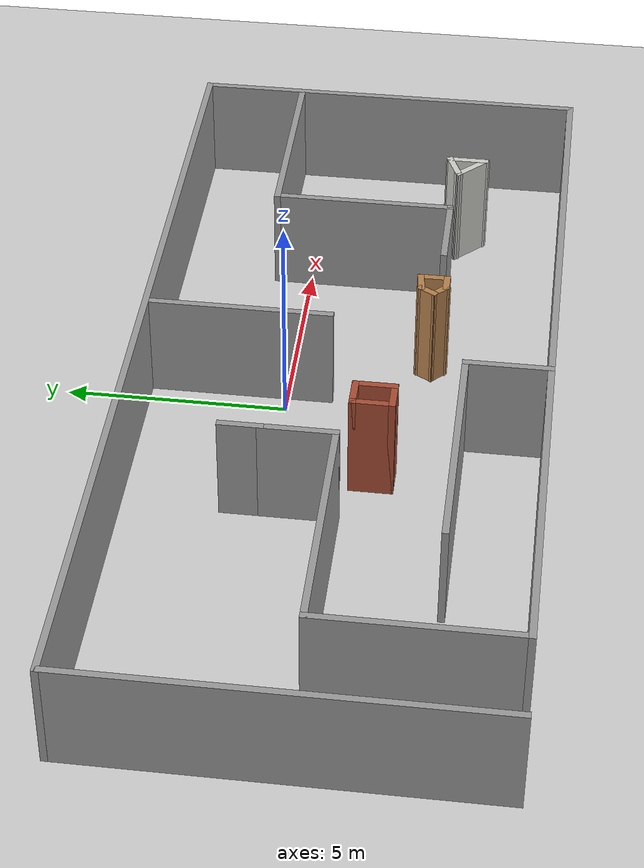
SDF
<sdf version="1.6">
 <world name="default">
  <plugin name="hello" filename="libhello.so"/>
  <light name="sun" type="directional">
   <pose>0 0 10 0 -0 0</pose>
   <diffuse>0.8 0.8 0.8 1</diffuse>
   <specular>0.2 0.2 0.2 1</specular>
   <attenuation>
    <range>1000</range>
    <constant>0.9</constant>
    <linear>0.01</linear>
    <quadratic>0.001</quadratic>
   </attenuation>
   <direction>-0.5 0.1 -0.9</direction>
  </light>
  <model name="ground_plane">
   <static>1</static>
   <link name="link">
    <collision name="collision">
     <geometry><plane><normal>0 0 1</normal><size>100 100</size></plane></geometry>
     <surface>
      <contact><collide_bitmask>65535</collide_bitmask></contact>
      <friction><ode><mu>100</mu><mu2>50</mu2></ode></friction>
     </surface>
    </collision>
    <visual name="visual">
     <cast_shadows>0</cast_shadows>
     <geometry><plane><normal>0 0 1</normal><size>100 100</size></plane></geometry>
     <material>
      <script><uri>file://media/materials/scripts/gazebo.material</uri><name>Gazebo/Grey</name></script>
     </material>
    </visual>
   </link>
  </model>
  <gravity>0 0 -9.8</gravity>
  <magnetic_field>6e-06 2.3e-05 -4.2e-05</magnetic_field>
  <atmosphere type="adiabatic"/>
  <physics name="default_physics" default="0" type="ode">
   <max_step_size>0.001</max_step_size>
   <real_time_factor>1</real_time_factor>
   <real_time_update_rate>1000</real_time_update_rate>
  </physics>
  <scene><ambient>0.4 0.4 0.4 1</ambient><background>0.7 0.7 0.7 1</background><shadows>1</shadows></scene>
  <audio><device>default</device></audio>
  <spherical_coordinates>
   <surface_model>EARTH_WGS84</surface_model>
   <latitude_deg>0</latitude_deg>
   <longitude_deg>0</longitude_deg>
   <elevation>0</elevation>
   <heading_deg>0</heading_deg>
  </spherical_coordinates>
  <model name="mybuilding">
   <pose>-0.67031 -1.36088 0 0 -0 0</pose>
   <link name="Wall_0">
    <collision name="Wall_0_Collision">
     <geometry><box><size>20.5 0.15 2.5</size></box></geometry>
     <pose>0 0 1.25 0 -0 0</pose>
    </collision>
    <visual name="Wall_0_Visual">
     <pose>0 0 1.25 0 -0 0</pose>
     <geometry><box><size>20.5 0.15 2.5</size></box></geometry>
     <material>
      <script><uri>file://media/materials/scripts/gazebo.material</uri><name>Gazebo/Grey</name></script>
      <ambient>1 1 1 1</ambient>
     </material>
     <meta><layer>0</layer></meta>
    </visual>
    <pose>-0 4.55 0 0 -0 0</pose>
   </link>
   <link name="Wall_1">
    <collision name="Wall_1_Collision">
     <geometry><box><size>9.25 0.15 2.5</size></box></geometry>
     <pose>0 0 1.25 0 -0 0</pose>
    </collision>
    <visual name="Wall_1_Visual">
     <pose>0 0 1.25 0 -0 0</pose>
     <geometry><box><size>9.25 0.15 2.5</size></box></geometry>
     <material>
      <script><uri>file://media/materials/scripts/gazebo.material</uri><name>Gazebo/Grey</name></script>
      <ambient>1 1 1 1</ambient>
     </material>
     <meta><layer>0</layer></meta>
    </visual>
    <pose>10.175 0 0 0 -0 -1.5708</pose>
   </link>
   <link name="Wall_11">
    <collision name="Wall_11_Collision">
     <geometry><box><size>4.75 0.15 2.5</size></box></geometry>
     <pose>0 0 1.25 0 -0 0</pose>
    </collision>
    <visual name="Wall_11_Visual">
     <pose>0 0 1.25 0 -0 0</pose>
     <geometry><box><size>4.75 0.15 2.5</size></box></geometry>
     <material>
      <script><uri>file://media/materials/scripts/gazebo.material</uri><name>Gazebo/Grey</name></script>
      <ambient>1 1 1 1</ambient>
     </material>
     <meta><layer>0</layer></meta>
    </visual>
    <pose>7.84755 2.18258 0 0 -0 3.14159</pose>
   </link>
   <link name="Wall_12">
    <collision name="Wall_12_Collision">
     <geometry><box><size>4.25 0.15 2.5</size></box></geometry>
     <pose>0 0 1.25 0 -0 0</pose>
    </collision>
    <visual name="Wall_12_Visual">
     <pose>0 0 1.25 0 -0 0</pose>
     <geometry><box><size>4.25 0.15 2.5</size></box></geometry>
     <material>
      <script><uri>file://media/materials/scripts/gazebo.material</uri><name>Gazebo/Grey</name></script>
      <ambient>1 1 1 1</ambient>
     </material>
     <meta><layer>0</layer></meta>
    </visual>
    <pose>5.54755 0.132582 0 0 -0 -1.5708</pose>
   </link>
   <link name="Wall_13">
    <collision name="Wall_13_Collision">
     <geometry><box><size>2 0.15 2.5</size></box></geometry>
     <pose>0 0 1.25 0 -0 0</pose>
    </collision>
    <visual name="Wall_13_Visual">
     <pose>0 0 1.25 0 -0 0</pose>
     <geometry><box><size>2 0.15 2.5</size></box></geometry>
     <material>
      <script><uri>file://media/materials/scripts/gazebo.material</uri><name>Gazebo/Grey</name></script>
      <ambient>1 1 1 1</ambient>
     </material>
     <meta><layer>0</layer></meta>
    </visual>
    <pose>4.62255 -1.91742 0 0 -0 3.14159</pose>
   </link>
   <link name="Wall_15">
    <collision name="Wall_15_Collision">
     <geometry><box><size>2 0.15 2.5</size></box></geometry>
     <pose>0 0 1.25 0 -0 0</pose>
    </collision>
    <visual name="Wall_15_Visual">
     <pose>0 0 1.25 0 -0 0</pose>
     <geometry><box><size>2 0.15 2.5</size></box></geometry>
     <material>
      <script><uri>file://media/materials/scripts/gazebo.material</uri><name>Gazebo/Grey</name></script>
      <ambient>1 1 1 1</ambient>
     </material>
     <meta><layer>0</layer></meta>
    </visual>
    <pose>-0.173325 -3.62227 0 0 -0 1.5708</pose>
   </link>
   <link name="Wall_16">
    <collision name="Wall_16_Collision">
     <geometry><box><size>5.5 0.15 2.5</size></box></geometry>
     <pose>0 0 1.25 0 -0 0</pose>
    </collision>
    <visual name="Wall_16_Visual">
     <pose>0 0 1.25 0 -0 0</pose>
     <geometry><box><size>5.5 0.15 2.5</size></box></geometry>
     <material>
      <script><uri>file://media/materials/scripts/gazebo.material</uri><name>Gazebo/Grey</name></script>
      <ambient>1 1 1 1</ambient>
     </material>
     <meta><layer>0</layer></meta>
    </visual>
    <pose>-2.84832 -2.69727 0 0 -0 3.14159</pose>
   </link>
   <link name="Wall_18">
    <collision name="Wall_18_Collision">
     <geometry><box><size>4.25 0.15 2.5</size></box></geometry>
     <pose>0 0 1.25 0 -0 0</pose>
    </collision>
    <visual name="Wall_18_Visual">
     <pose>0 0 1.25 0 -0 0</pose>
     <geometry><box><size>4.25 0.15 2.5</size></box></geometry>
     <material>
      <script><uri>file://media/materials/scripts/gazebo.material</uri><name>Gazebo/Grey</name></script>
      <ambient>1 1 1 1</ambient>
     </material>
     <meta><layer>0</layer></meta>
    </visual>
    <pose>1.13008 2.4468 0 0 -0 -1.5708</pose>
   </link>
   <link name="Wall_2">
    <collision name="Wall_2_Collision">
     <geometry><box><size>18.5 0.15 2.5</size></box></geometry>
     <pose>0 0 1.25 0 -0 0</pose>
    </collision>
    <visual name="Wall_2_Visual">
     <pose>0 0 1.25 0 -0 0</pose>
     <geometry><box><size>18.5 0.15 2.5</size></box></geometry>
     <material>
      <script><uri>file://media/materials/scripts/gazebo.material</uri><name>Gazebo/Grey</name></script>
      <ambient>1 1 1 1</ambient>
     </material>
     <meta><layer>0</layer></meta>
    </visual>
    <pose>1 -4.55 0 0 -0 3.14159</pose>
   </link>
   <link name="Wall_4">
    <collision name="Wall_4_Collision">
     <geometry><box><size>9.25 0.15 2.5</size></box></geometry>
     <pose>0 0 1.25 0 -0 0</pose>
    </collision>
    <visual name="Wall_4_Visual">
     <pose>0 0 1.25 0 -0 0</pose>
     <geometry><box><size>9.25 0.15 2.5</size></box></geometry>
     <material>
      <script><uri>file://media/materials/scripts/gazebo.material</uri><name>Gazebo/Grey</name></script>
      <ambient>1 1 1 1</ambient>
     </material>
     <meta><layer>0</layer></meta>
    </visual>
    <pose>-10.175 0 0 0 -0 -1.5708</pose>
   </link>
   <link name="Wall_6">
    <collision name="Wall_6_Collision">
     <geometry><box><size>4.5 0.15 2.5</size></box></geometry>
     <pose>0 0 1.25 0 -0 0</pose>
    </collision>
    <visual name="Wall_6_Visual">
     <pose>0 0 1.25 0 -0 0</pose>
     <geometry><box><size>4.5 0.15 2.5</size></box></geometry>
     <material>
      <script><uri>file://media/materials/scripts/gazebo.material</uri><name>Gazebo/Grey</name></script>
      <ambient>1 1 1 1</ambient>
     </material>
     <meta><layer>0</layer></meta>
    </visual>
    <pose>-8.175 -2.375 0 0 -0 1.5708</pose>
   </link>
   <link name="Wall_7">
    <collision name="Wall_7_Collision">
     <geometry><box><size>5.5 0.15 2.5</size></box></geometry>
     <pose>0 0 1.25 0 -0 0</pose>
    </collision>
    <visual name="Wall_7_Visual">
     <pose>0 0 1.25 0 -0 0</pose>
     <geometry><box><size>5.5 0.15 2.5</size></box></geometry>
     <material>
      <script><uri>file://media/materials/scripts/gazebo.material</uri><name>Gazebo/Grey</name></script>
      <ambient>1 1 1 1</ambient>
     </material>
     <meta><layer>0</layer></meta>
    </visual>
    <pose>-5.5 -0.2 0 0 -0 0</pose>
   </link>
   <link name="Wall_8">
    <collision name="Wall_8_Collision">
     <geometry><box><size>1.75 0.15 2.5</size></box></geometry>
     <pose>0 0 1.25 0 -0 0</pose>
    </collision>
    <visual name="Wall_8_Visual">
     <pose>0 0 1.25 0 -0 0</pose>
     <geometry><box><size>1.75 0.15 2.5</size></box></geometry>
     <material>
      <script><uri>file://media/materials/scripts/gazebo.material</uri><name>Gazebo/Grey</name></script>
      <ambient>1 1 1 1</ambient>
     </material>
     <meta><layer>0</layer></meta>
    </visual>
    <pose>-2.825 0.6 0 0 -0 1.5708</pose>
   </link>
   <link name="Wall_9">
    <collision name="Wall_9_Collision">
     <geometry><box><size>1 0.15 2.5</size></box></geometry>
     <pose>0 0 1.25 0 -0 0</pose>
    </collision>
    <visual name="Wall_9_Visual">
     <pose>0 0 1.25 0 -0 0</pose>
     <geometry><box><size>1 0.15 2.5</size></box></geometry>
     <material>
      <script><uri>file://media/materials/scripts/gazebo.material</uri><name>Gazebo/Grey</name></script>
      <ambient>1 1 1 1</ambient>
     </material>
     <meta><layer>0</layer></meta>
    </visual>
    <pose>-2.825 1.825 0 0 -0 1.5708</pose>
   </link>
   <static>1</static>
  </model>
  <model name="items">
   <pose>2.24553 -2.89053 0 0 -0 0</pose>
   <link name="Wall_0">
    <collision name="Wall_0_Collision">
     <geometry><box><size>1 0.15 2.5</size></box></geometry>
     <pose>0 0 1.25 0 -0 0</pose>
    </collision>
    <visual name="Wall_0_Visual">
     <pose>0 0 1.25 0 -0 0</pose>
     <geometry><box><size>1 0.15 2.5</size></box></geometry>
     <material>
      <script><uri>file://media/materials/scripts/gazebo.material</uri><name>Gazebo/Bricks</name></script>
      <ambient>1 1 1 1</ambient>
     </material>
     <meta><layer>0</layer></meta>
    </visual>
    <pose>-4.69553 0.685533 0 0 -0 1.5708</pose>
   </link>
   <link name="Wall_1">
    <collision name="Wall_1_Collision">
     <geometry><box><size>0.75 0.15 2.5</size></box></geometry>
     <pose>0 0 1.25 0 -0 0</pose>
    </collision>
    <visual name="Wall_1_Visual">
     <pose>0 0 1.25 0 -0 0</pose>
     <geometry><box><size>0.75 0.15 2.5</size></box></geometry>
     <material>
      <script><uri>file://media/materials/scripts/gazebo.material</uri><name>Gazebo/Bricks</name></script>
      <ambient>1 1 1 1</ambient>
     </material>
     <meta><layer>0</layer></meta>
    </visual>
    <pose>-4.39553 1.11053 0 0 -0 0</pose>
   </link>
   <link name="Wall_12">
    <collision name="Wall_12_Collision">
     <geometry><box><size>1 0.15 2.5</size></box></geometry>
     <pose>0 0 1.25 0 -0 0</pose>
    </collision>
    <visual name="Wall_12_Visual">
     <pose>0 0 1.25 0 -0 0</pose>
     <geometry><box><size>1 0.15 2.5</size></box></geometry>
     <material>
      <script><uri>file://media/materials/scripts/gazebo.material</uri><name>Gazebo/CeilingTiled</name></script>
      <ambient>1 1 1 1</ambient>
     </material>
     <meta><layer>0</layer></meta>
    </visual>
    <pose>4.66447 -0.654467 0 0 -0 -1.5708</pose>
   </link>
   <link name="Wall_13">
    <collision name="Wall_13_Collision">
     <geometry><box><size>1 0.15 2.5</size></box></geometry>
     <pose>0 0 1.25 0 -0 0</pose>
    </collision>
    <visual name="Wall_13_Visual">
     <pose>0 0 1.25 0 -0 0</pose>
     <geometry><box><size>1 0.15 2.5</size></box></geometry>
     <material>
      <script><uri>file://media/materials/scripts/gazebo.material</uri><name>Gazebo/CeilingTiled</name></script>
      <ambient>1 1 1 1</ambient>
     </material>
     <meta><layer>0</layer></meta>
    </visual>
    <pose>4.36395 -0.778947 0 0 -0 2.35619</pose>
   </link>
   <link name="Wall_14">
    <collision name="Wall_14_Collision">
     <geometry><box><size>0.800562 0.15 2.5</size></box></geometry>
     <pose>0 0 1.25 0 -0 0</pose>
    </collision>
    <visual name="Wall_14_Visual">
     <pose>0 0 1.25 0 -0 0</pose>
     <geometry><box><size>0.800562 0.15 2.5</size></box></geometry>
     <material>
      <script><uri>file://media/materials/scripts/gazebo.material</uri><name>Gazebo/CeilingTiled</name></script>
      <ambient>1 1 1 1</ambient>
     </material>
     <meta><layer>0</layer></meta>
    </visual>
    <pose>4.36395 -0.353947 0 0 -0 0.392699</pose>
   </link>
   <link name="Wall_2">
    <collision name="Wall_2_Collision">
     <geometry><box><size>1 0.15 2.5</size></box></geometry>
     <pose>0 0 1.25 0 -0 0</pose>
    </collision>
    <visual name="Wall_2_Visual">
     <pose>0 0 1.25 0 -0 0</pose>
     <geometry><box><size>1 0.15 2.5</size></box></geometry>
     <material>
      <script><uri>file://media/materials/scripts/gazebo.material</uri><name>Gazebo/Bricks</name></script>
      <ambient>1 1 1 1</ambient>
     </material>
     <meta><layer>0</layer></meta>
    </visual>
    <pose>-4.09553 0.685533 0 0 -0 -1.5708</pose>
   </link>
   <link name="Wall_3">
    <collision name="Wall_3_Collision">
     <geometry><box><size>0.75 0.15 2.5</size></box></geometry>
     <pose>0 0 1.25 0 -0 0</pose>
    </collision>
    <visual name="Wall_3_Visual">
     <pose>0 0 1.25 0 -0 0</pose>
     <geometry><box><size>0.75 0.15 2.5</size></box></geometry>
     <material>
      <script><uri>file://media/materials/scripts/gazebo.material</uri><name>Gazebo/Bricks</name></script>
      <ambient>1 1 1 1</ambient>
     </material>
     <meta><layer>0</layer></meta>
    </visual>
    <pose>-4.39553 0.260533 0 0 -0 3.14159</pose>
   </link>
   <link name="Wall_5">
    <collision name="Wall_5_Collision">
     <geometry><box><size>0.75 0.15 2.5</size></box></geometry>
     <pose>0 0 1.25 0 -0 0</pose>
    </collision>
    <visual name="Wall_5_Visual">
     <pose>0 0 1.25 0 -0 0</pose>
     <geometry><box><size>0.75 0.15 2.5</size></box></geometry>
     <material>
      <script><uri>file://media/materials/scripts/gazebo.material</uri><name>Gazebo/Wood</name></script>
      <ambient>1 1 1 1</ambient>
     </material>
     <meta><layer>0</layer></meta>
    </visual>
    <pose>-0.145533 -0.239467 0 0 -0 -1.5708</pose>
   </link>
   <link name="Wall_6">
    <collision name="Wall_6_Collision">
     <geometry><box><size>0.5 0.15 2.5</size></box></geometry>
     <pose>0 0 1.25 0 -0 0</pose>
    </collision>
    <visual name="Wall_6_Visual">
     <pose>0 0 1.25 0 -0 0</pose>
     <geometry><box><size>0.5 0.15 2.5</size></box></geometry>
     <material>
      <script><uri>file://media/materials/scripts/gazebo.material</uri><name>Gazebo/Wood</name></script>
      <ambient>1 1 1 1</ambient>
     </material>
     <meta><layer>0</layer></meta>
    </visual>
    <pose>-0.320533 -0.539467 0 0 -0 3.14159</pose>
   </link>
   <link name="Wall_7">
    <collision name="Wall_7_Collision">
     <geometry><box><size>0.5 0.15 2.5</size></box></geometry>
     <pose>0 0 1.25 0 -0 0</pose>
    </collision>
    <visual name="Wall_7_Visual">
     <pose>0 0 1.25 0 -0 0</pose>
     <geometry><box><size>0.5 0.15 2.5</size></box></geometry>
     <material>
      <script><uri>file://media/materials/scripts/gazebo.material</uri><name>Gazebo/Wood</name></script>
      <ambient>1 1 1 1</ambient>
     </material>
     <meta><layer>0</layer></meta>
    </visual>
    <pose>-0.619277 -0.415723 0 0 -0 2.35619</pose>
   </link>
   <link name="Wall_8">
    <collision name="Wall_8_Collision">
     <geometry><box><size>0.5 0.15 2.5</size></box></geometry>
     <pose>0 0 1.25 0 -0 0</pose>
    </collision>
    <visual name="Wall_8_Visual">
     <pose>0 0 1.25 0 -0 0</pose>
     <geometry><box><size>0.5 0.15 2.5</size></box></geometry>
     <material>
      <script><uri>file://media/materials/scripts/gazebo.material</uri><name>Gazebo/Wood</name></script>
      <ambient>1 1 1 1</ambient>
     </material>
     <meta><layer>0</layer></meta>
    </visual>
    <pose>-0.65552 -0.140425 0 0 -0 1.0472</pose>
   </link>
   <link name="Wall_9">
    <collision name="Wall_9_Collision">
     <geometry><box><size>0.575366 0.15 2.5</size></box></geometry>
     <pose>0 0 1.25 0 -0 0</pose>
    </collision>
    <visual name="Wall_9_Visual">
     <pose>0 0 1.25 0 -0 0</pose>
     <geometry><box><size>0.575366 0.15 2.5</size></box></geometry>
     <material>
      <script><uri>file://media/materials/scripts/gazebo.material</uri><name>Gazebo/Wood</name></script>
      <ambient>1 1 1 1</ambient>
     </material>
     <meta><layer>0</layer></meta>
    </visual>
    <pose>-0.356777 0.035831 0 0 -0 0.116407</pose>
   </link>
   <static>1</static>
  </model>
  <model name="white_ball">
   <link name="link_0">
    <inertial>
     <mass>1</mass>
     <inertia><ixx>0.1</ixx><ixy>0</ixy><ixz>0</ixz><iyy>0.1</iyy><iyz>0</iyz><izz>0.1</izz></inertia>
    </inertial>
    <visual name="visual">
     <geometry><sphere><radius>0.1</radius></sphere></geometry>
     <material>
      <lighting>1</lighting>
      <script><uri>file://media/materials/scripts/gazebo.material</uri><name>Gazebo/Grey</name></script>
      <shader type="vertex"><normal_map>__default__</normal_map></shader>
      <ambient>1 1 1 1</ambient>
      <diffuse>1 1 1 1</diffuse>
      <specular>1 1 1 1</specular>
      <emissive>1 1 1 1</emissive>
     </material>
    </visual>
    <collision name="collision">
     <geometry><sphere><radius>0.1</radius></sphere></geometry>
     <surface>
      <friction>
       <ode><mu>1</mu><mu2>1</mu2><fdir1>0 0 0</fdir1><slip1>0</slip1><slip2>0</slip2></ode>
       <torsional>
        <coefficient>1</coefficient>
        <patch_radius>0</patch_radius>
        <surface_radius>0</surface_radius>
        <use_patch_radius>1</use_patch_radius>
        <ode><slip>0</slip></ode>
       </torsional>
      </friction>
      <bounce><restitution_coefficient>0</restitution_coefficient><threshold>1e+06</threshold></bounce>
      <contact>
       <collide_without_contact>0</collide_without_contact>
       <collide_without_contact_bitmask>1</collide_without_contact_bitmask>
       <collide_bitmask>1</collide_bitmask>
       <ode>
        <soft_cfm>0</soft_cfm>
        <soft_erp>0.2</soft_erp>
        <kp>1e+13</kp>
        <kd>1</kd>
        <max_vel>0.01</max_vel>
        <min_depth>0</min_depth>
       </ode>
       <bullet>
        <split_impulse>1</split_impulse>
        <split_impulse_penetration_threshold>-0.01</split_impulse_penetration_threshold>
        <soft_cfm>0</soft_cfm>
        <soft_erp>0.2</soft_erp>
        <kp>1e+13</kp>
        <kd>1</kd>
       </bullet>
      </contact>
     </surface>
    </collision>
   </link>
   <static>0</static>
   <pose>1.99442 -0.245816 0.1 0 -0 0</pose>
  </model>
 </world>
</sdf>
